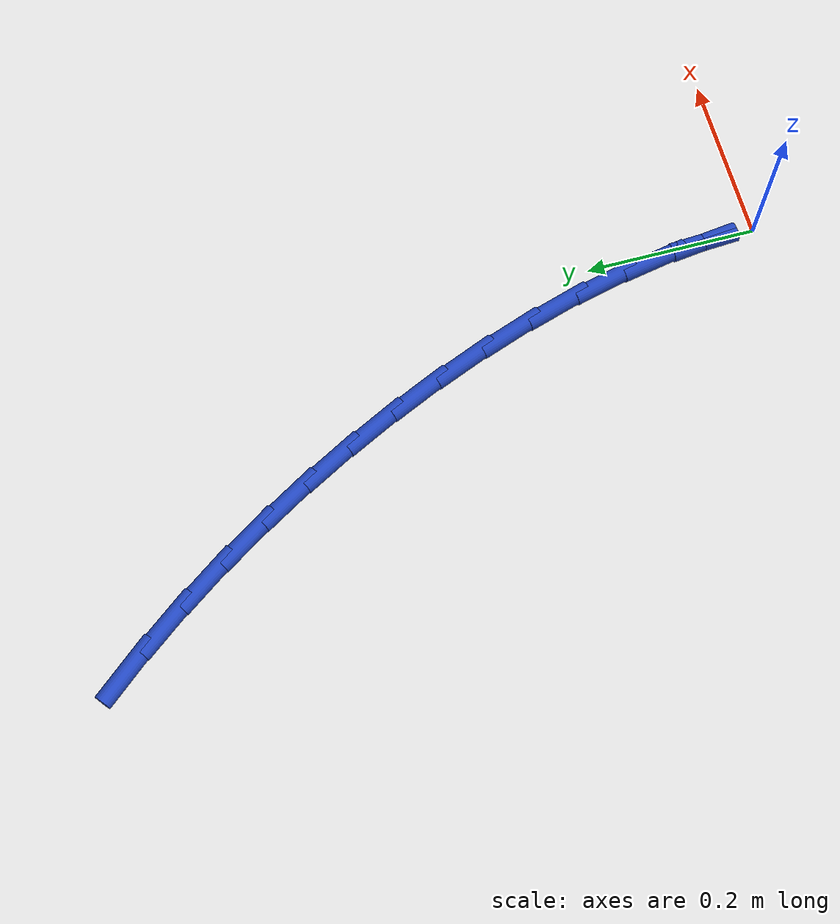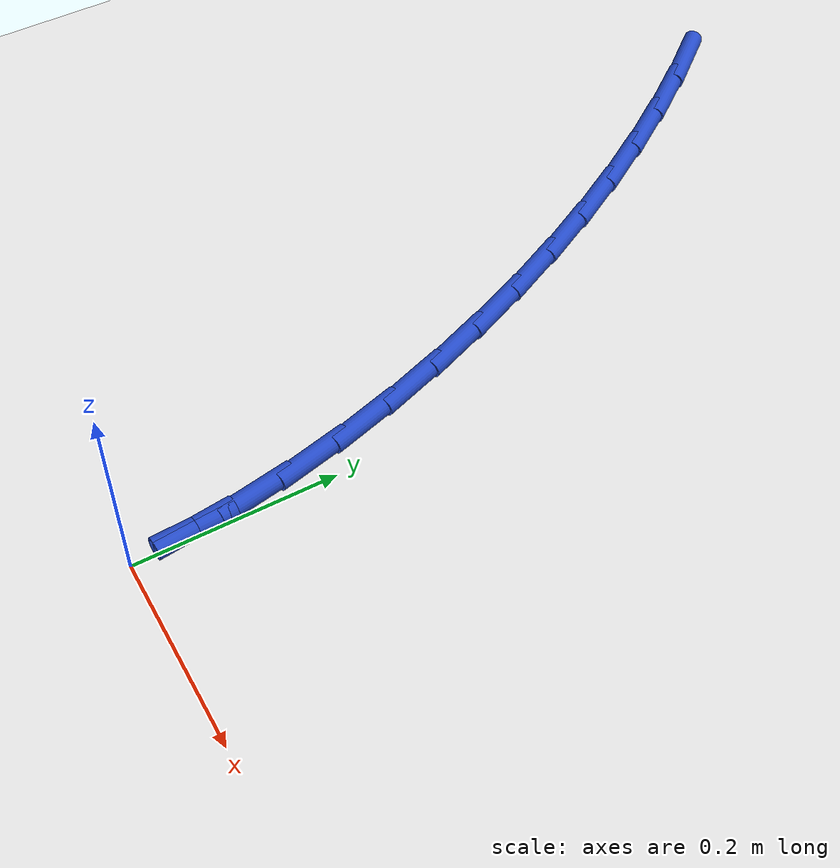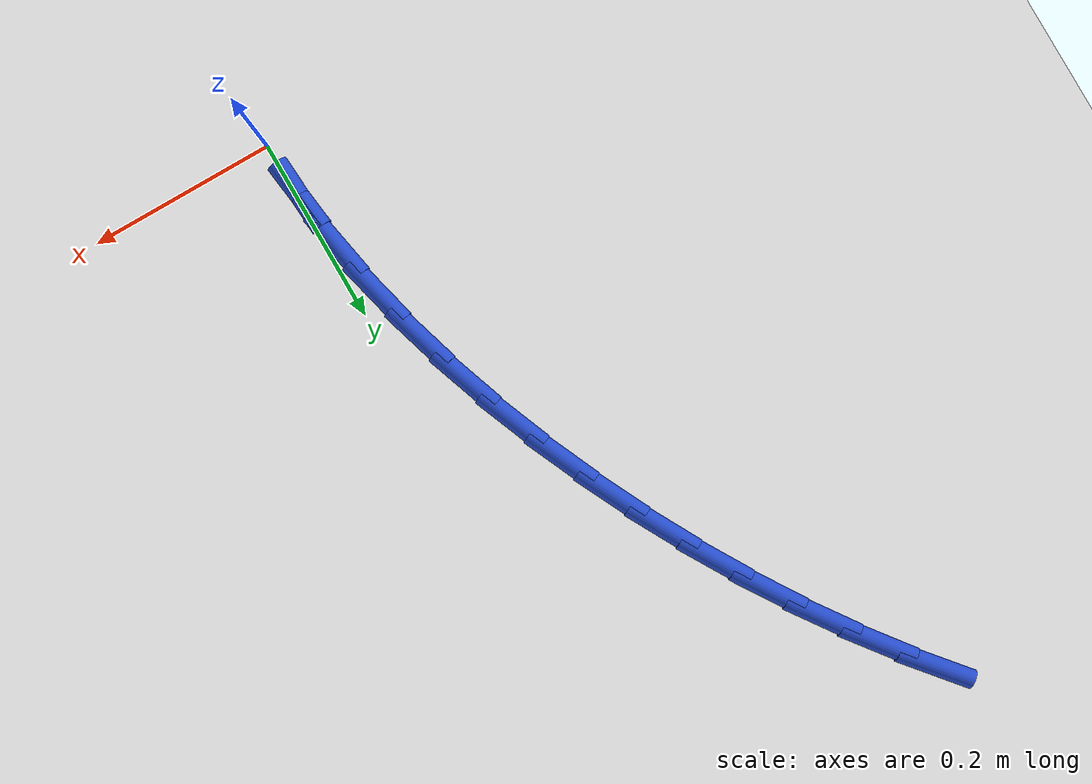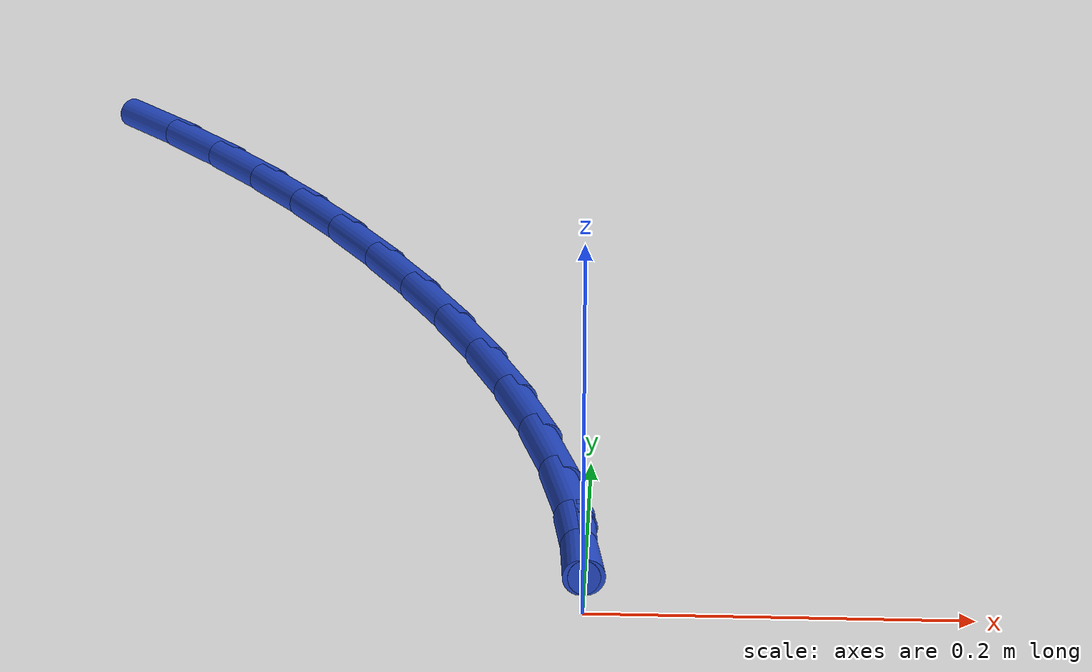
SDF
<sdf version="1.6">
 <world name="default">
  <model name="ground_plane">
   <static>1</static>
   <link name="link">
    <collision name="collision">
     <geometry><plane><normal>0 0 1</normal><size>100 100</size></plane></geometry>
     <surface><friction><ode><mu>100</mu><mu2>50</mu2></ode></friction></surface>
    </collision>
    <visual name="visual">
     <cast_shadows>0</cast_shadows>
     <geometry><plane><normal>0 0 1</normal><size>100 100</size></plane></geometry>
     <material>
      <script><uri>file://media/materials/scripts/gazebo.material</uri><name>Gazebo/WhiteGlow</name></script>
     </material>
    </visual>
   </link>
  </model>
  <model name="line">
   <link name="link_1">
    <pose>-0.0035275748378247613 0.0627588055994806 0.01 0 1.57 -1.4486538031751304</pose>
    <collision name="collision">
     <geometry><cylinder><radius>0.01</radius><length>0.08</length></cylinder></geometry>
    </collision>
    <visual name="visual">
     <material>
      <script><name>Gazebo/Blue</name><uri>file://media/materials/scripts/gazebo.material</uri></script>
     </material>
     <geometry><cylinder><radius>0.01</radius><length>0.08</length></cylinder></geometry>
    </visual>
   </link>
   <link name="link_2">
    <pose>-0.01118317298270967 0.1251243866551063 0.01 0 1.57 -1.387532851506006</pose>
    <collision name="collision">
     <geometry><cylinder><radius>0.01</radius><length>0.08</length></cylinder></geometry>
    </collision>
    <visual name="visual">
     <material>
      <script><name>Gazebo/Blue</name><uri>file://media/materials/scripts/gazebo.material</uri></script>
     </material>
     <geometry><cylinder><radius>0.01</radius><length>0.08</length></cylinder></geometry>
    </visual>
   </link>
   <link name="link_3">
    <pose>-0.02264094633541827 0.1869436527196392 0.01 0 1.57 -1.3311506376126652</pose>
    <collision name="collision">
     <geometry><cylinder><radius>0.01</radius><length>0.08</length></cylinder></geometry>
    </collision>
    <visual name="visual">
     <material>
      <script><name>Gazebo/Blue</name><uri>file://media/materials/scripts/gazebo.material</uri></script>
     </material>
     <geometry><cylinder><radius>0.01</radius><length>0.08</length></cylinder></geometry>
    </visual>
   </link>
   <link name="link_4">
    <pose>-0.03757504679671409 0.2480635133458415 0.01 0 1.57 -1.2792730097675926</pose>
    <collision name="collision">
     <geometry><cylinder><radius>0.01</radius><length>0.08</length></cylinder></geometry>
    </collision>
    <visual name="visual">
     <material>
      <script><name>Gazebo/Blue</name><uri>file://media/materials/scripts/gazebo.material</uri></script>
     </material>
     <geometry><cylinder><radius>0.01</radius><length>0.08</length></cylinder></geometry>
    </visual>
   </link>
   <link name="link_5">
    <pose>-0.055659626267360714 0.3083308780864756 0.01 0 1.57 -1.231604421512206</pose>
    <collision name="collision">
     <geometry><cylinder><radius>0.01</radius><length>0.08</length></cylinder></geometry>
    </collision>
    <visual name="visual">
     <material>
      <script><name>Gazebo/Blue</name><uri>file://media/materials/scripts/gazebo.material</uri></script>
     </material>
     <geometry><cylinder><radius>0.01</radius><length>0.08</length></cylinder></geometry>
    </visual>
   </link>
   <link name="link_6">
    <pose>-0.07656883664812171 0.36759265649430367 0.01 0 1.57 -1.1878183126775423</pose>
    <collision name="collision">
     <geometry><cylinder><radius>0.01</radius><length>0.08</length></cylinder></geometry>
    </collision>
    <visual name="visual">
     <material>
      <script><name>Gazebo/Blue</name><uri>file://media/materials/scripts/gazebo.material</uri></script>
     </material>
     <geometry><cylinder><radius>0.01</radius><length>0.08</length></cylinder></geometry>
    </visual>
   </link>
   <link name="link_7">
    <pose>-0.09997682983976057 0.4256957581220878 0.01 0 1.57 -1.1475789098618154</pose>
    <collision name="collision">
     <geometry><cylinder><radius>0.01</radius><length>0.08</length></cylinder></geometry>
    </collision>
    <visual name="visual">
     <material>
      <script><name>Gazebo/Blue</name><uri>file://media/materials/scripts/gazebo.material</uri></script>
     </material>
     <geometry><cylinder><radius>0.01</radius><length>0.08</length></cylinder></geometry>
    </visual>
   </link>
   <link name="link_8">
    <pose>-0.1255577577430409 0.4824870925225906 0.01 0 1.57 -1.1103068383684485</pose>
    <collision name="collision">
     <geometry><cylinder><radius>0.01</radius><length>0.08</length></cylinder></geometry>
    </collision>
    <visual name="visual">
     <material>
      <script><name>Gazebo/Blue</name><uri>file://media/materials/scripts/gazebo.material</uri></script>
     </material>
     <geometry><cylinder><radius>0.01</radius><length>0.08</length></cylinder></geometry>
    </visual>
   </link>
   <link name="link_9">
    <pose>-0.1530094139214489 0.5378266398961531 0.01 0 1.57 -1.0731382534008154</pose>
    <collision name="collision">
     <geometry><cylinder><radius>0.01</radius><length>0.08</length></cylinder></geometry>
    </collision>
    <visual name="visual">
     <material>
      <script><name>Gazebo/Blue</name><uri>file://media/materials/scripts/gazebo.material</uri></script>
     </material>
     <geometry><cylinder><radius>0.01</radius><length>0.08</length></cylinder></geometry>
    </visual>
   </link>
   <link name="link_10">
    <pose>-0.1822855998759637 0.5917159182684251 0.01 0 1.57 -1.0346589024551174</pose>
    <collision name="collision">
     <geometry><cylinder><radius>0.01</radius><length>0.08</length></cylinder></geometry>
    </collision>
    <visual name="visual">
     <material>
      <script><name>Gazebo/Blue</name><uri>file://media/materials/scripts/gazebo.material</uri></script>
     </material>
     <geometry><cylinder><radius>0.01</radius><length>0.08</length></cylinder></geometry>
    </visual>
   </link>
   <link name="link_11">
    <pose>-0.21349676234538031 0.6442430493325924 0.01 0 1.57 -0.9951962845599628</pose>
    <collision name="collision">
     <geometry><cylinder><radius>0.01</radius><length>0.08</length></cylinder></geometry>
    </collision>
    <visual name="visual">
     <material>
      <script><name>Gazebo/Blue</name><uri>file://media/materials/scripts/gazebo.material</uri></script>
     </material>
     <geometry><cylinder><radius>0.01</radius><length>0.08</length></cylinder></geometry>
    </visual>
   </link>
   <link name="link_12">
    <pose>-0.2467556013667598 0.6954974005515602 0.01 0 1.57 -0.9551340312050903</pose>
    <collision name="collision">
     <geometry><cylinder><radius>0.01</radius><length>0.08</length></cylinder></geometry>
    </collision>
    <visual name="visual">
     <material>
      <script><name>Gazebo/Blue</name><uri>file://media/materials/scripts/gazebo.material</uri></script>
     </material>
     <geometry><cylinder><radius>0.01</radius><length>0.08</length></cylinder></geometry>
    </visual>
   </link>
   <link name="link_13">
    <pose>-0.28217481697716323 0.7455683393882334 0.01 0 1.57 -0.914872943289031</pose>
    <collision name="collision">
     <geometry><cylinder><radius>0.01</radius><length>0.08</length></cylinder></geometry>
    </collision>
    <visual name="visual">
     <material>
      <script><name>Gazebo/Blue</name><uri>file://media/materials/scripts/gazebo.material</uri></script>
     </material>
     <geometry><cylinder><radius>0.01</radius><length>0.08</length></cylinder></geometry>
    </visual>
   </link>
   <link name="link_14">
    <pose>-0.3198671092136516 0.7945452333055169 0.01 0 1.57 -0.8748140903989629</pose>
    <collision name="collision">
     <geometry><cylinder><radius>0.01</radius><length>0.08</length></cylinder></geometry>
    </collision>
    <visual name="visual">
     <material>
      <script><name>Gazebo/Blue</name><uri>file://media/materials/scripts/gazebo.material</uri></script>
     </material>
     <geometry><cylinder><radius>0.01</radius><length>0.08</length></cylinder></geometry>
    </visual>
   </link>
   <link name="link_121">
    <pose>-0.003596982525554116 0.06272992096265886 0.01 0 1.57 -1.5135182690738167</pose>
    <collision name="collision">
     <geometry><cylinder><radius>0.01</radius><length>0.08</length></cylinder></geometry>
    </collision>
    <visual name="visual">
     <material>
      <script><name>Gazebo/Blue</name><uri>file://media/materials/scripts/gazebo.material</uri></script>
     </material>
     <geometry><cylinder><radius>0.01</radius><length>0.08</length></cylinder></geometry>
    </visual>
   </link>
  </model>
 </world>
</sdf>
